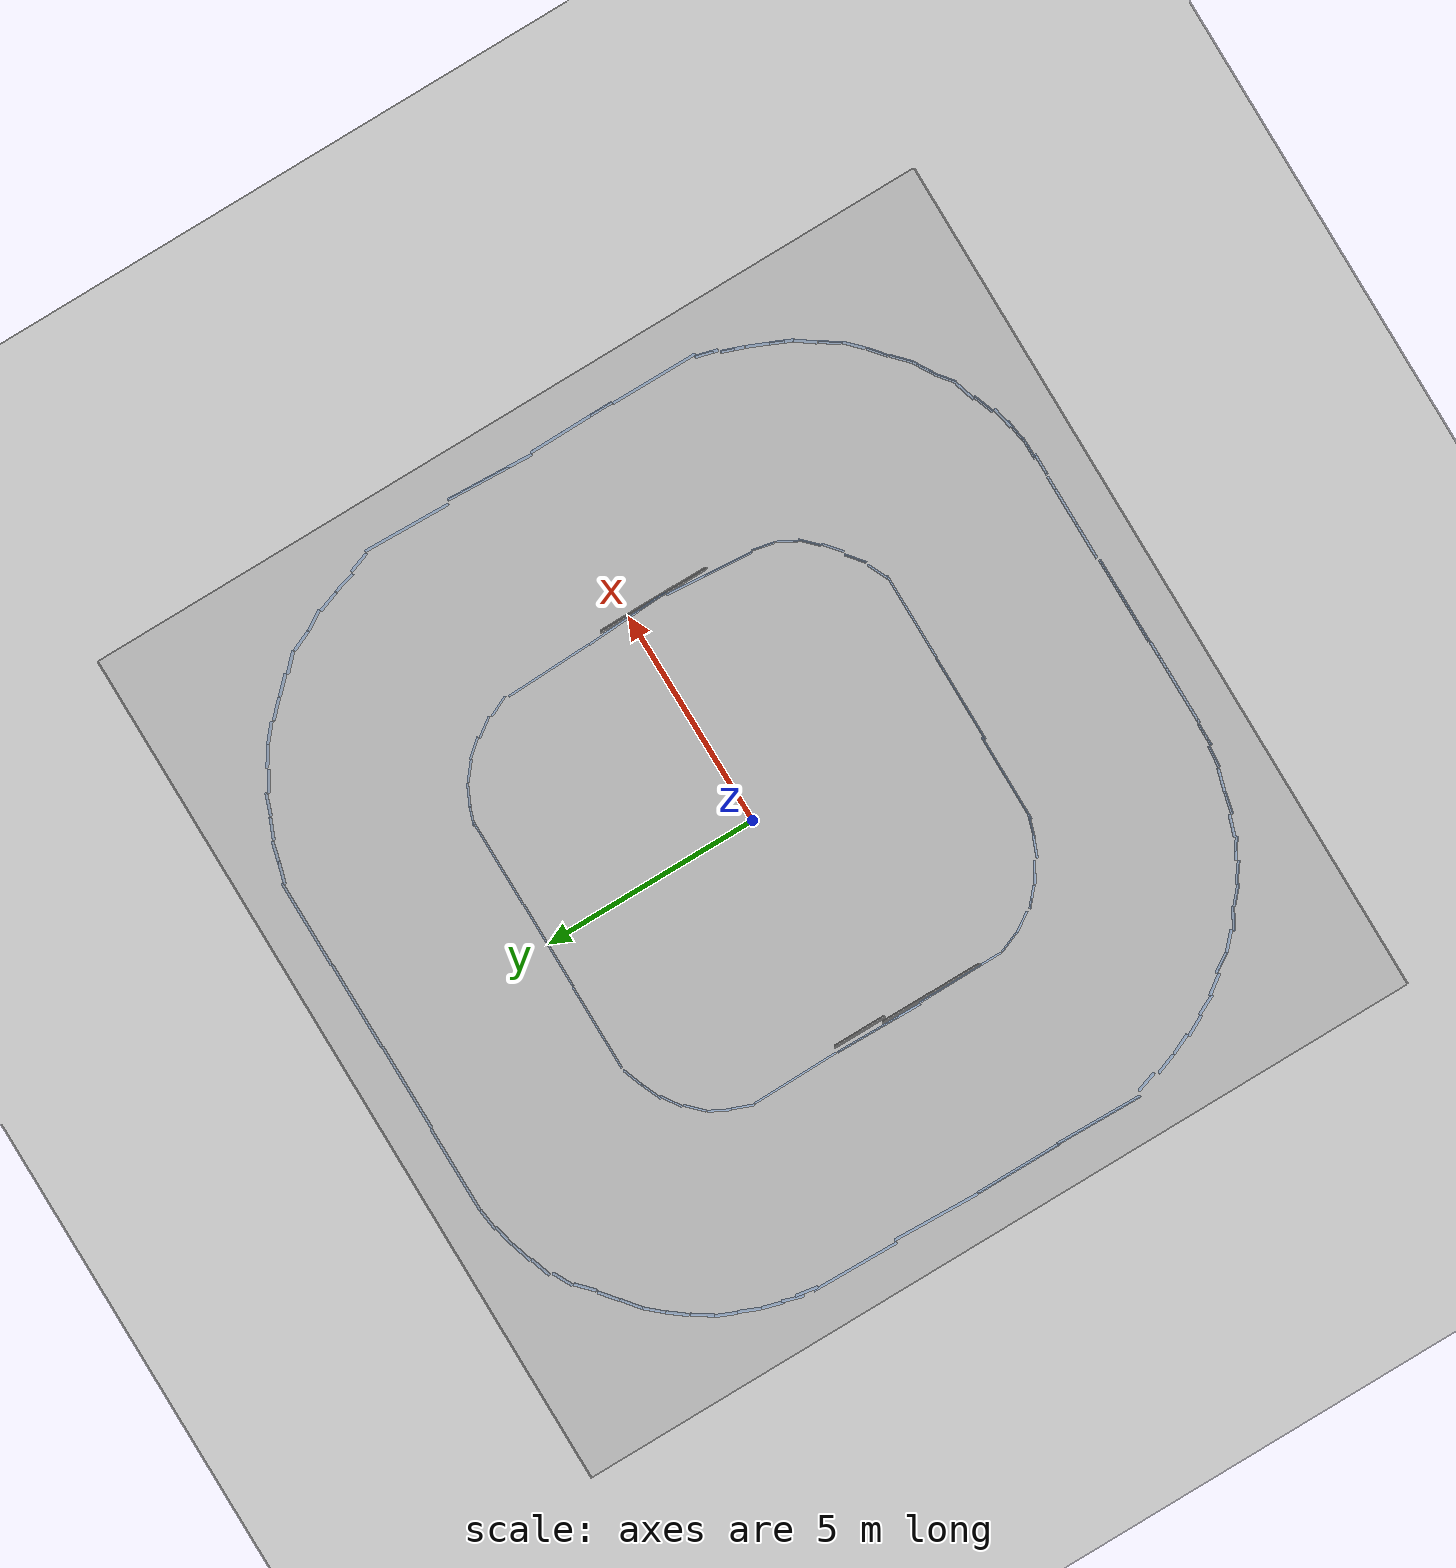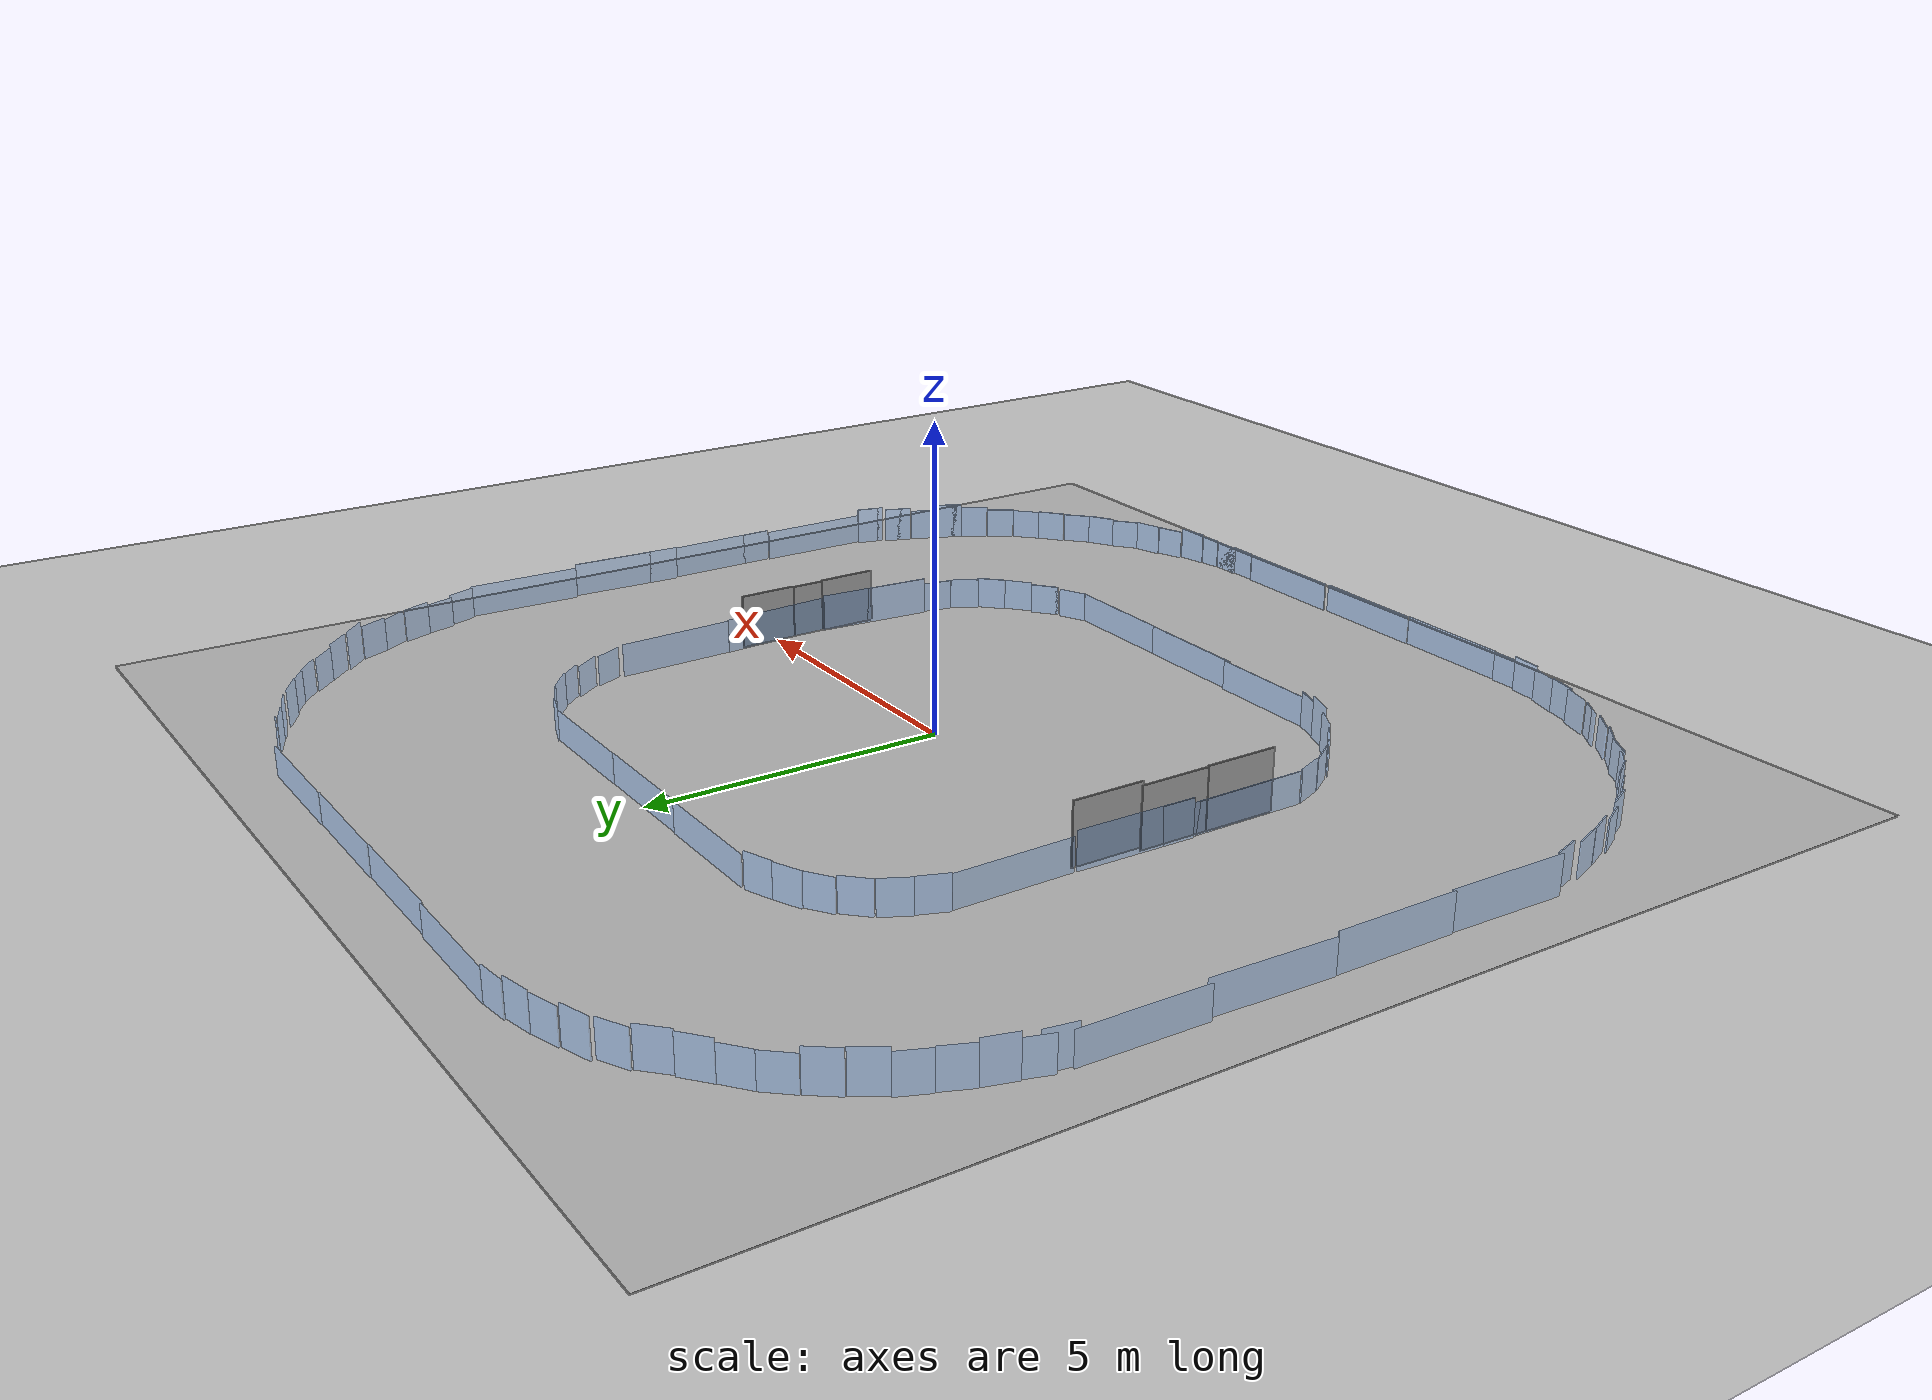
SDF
<sdf version="1.7">
 <world name="saft_city_arena">
  <model name="ground_plane">
   <static>1</static>
   <link name="link">
    <collision name="collision">
     <geometry><plane><normal>0 0 1</normal><size>100 100</size></plane></geometry>
     <surface>
      <contact><collide_bitmask>65535</collide_bitmask></contact>
      <friction><ode><mu>100</mu><mu2>50</mu2></ode></friction>
     </surface>
    </collision>
    <visual name="visual">
     <cast_shadows>0</cast_shadows>
     <geometry><plane><normal>0 0 1</normal><size>100 100</size></plane></geometry>
     <material>
      <script><uri>file://media/materials/scripts/gazebo.material</uri><name>Gazebo/Grey</name></script>
     </material>
    </visual>
   </link>
  </model>
  <model name="race_track">
   <pose>-0.01892 0.017455 0 0 -0 0</pose>
   <static>1</static>
   <link name="ground">
    <collision name="collision">
     <pose>0 0 -0.025 0 -0 0</pose>
     <geometry><box><size>20 20 0.08</size></box></geometry>
    </collision>
    <visual name="visual">
     <pose>0 0 0.005 0 -0 0</pose>
     <geometry><box><size>20 20 0.01</size></box></geometry>
     <material><script><uri>model://race_track</uri><name>race_track/ground</name></script></material>
    </visual>
   </link>
  </model>
  <model name="trash_sign_01">
   <static>1</static>
   <link name="sign">
    <visual name="visual">
     <pose>0 0 0.1 0 -0 0</pose>
     <geometry><box><size>0.02 1 1</size></box></geometry>
     <material>
      <script>
       <uri>model://photo_signs/trash_sign_01/materials/scripts</uri>
       <uri>model://photo_signs/trash_sign_01/materials/textures</uri>
       <name>PhotoSign/trash_sign_01</name>
      </script>
     </material>
    </visual>
   </link>
   <pose>5.03179 -1.40382 0.327227 0 -0 0</pose>
  </model>
  <model name="trash_sign_02">
   <static>1</static>
   <link name="sign">
    <visual name="visual">
     <pose>0 0 0.1 0 -0 0</pose>
     <geometry><box><size>0.02 1 1</size></box></geometry>
     <material>
      <script>
       <uri>model://photo_signs/trash_sign_02/materials/scripts</uri>
       <uri>model://photo_signs/trash_sign_02/materials/textures</uri>
       <name>PhotoSign/trash_sign_02</name>
      </script>
     </material>
    </visual>
   </link>
   <pose>5.04017 -0.636448 0.309953 0 -0 0</pose>
  </model>
  <model name="trash_sign_03">
   <static>1</static>
   <link name="sign">
    <visual name="visual">
     <pose>0 0 0.1 0 -0 0</pose>
     <geometry><box><size>0.02 1 1</size></box></geometry>
     <material>
      <script>
       <uri>model://photo_signs/trash_sign_03/materials/scripts</uri>
       <uri>model://photo_signs/trash_sign_03/materials/textures</uri>
       <name>PhotoSign/trash_sign_03</name>
      </script>
     </material>
    </visual>
   </link>
   <pose>5.03698 0.168034 0.324503 0 -0 0</pose>
  </model>
  <model name="building_sign_02">
   <static>1</static>
   <link name="sign">
    <visual name="visual">
     <pose>0 0 0.175 0 -0 0</pose>
     <geometry><box><size>0.02 1.2 1.2</size></box></geometry>
     <material>
      <script>
       <uri>model://photo_signs/building_sign_02/materials/scripts</uri>
       <uri>model://photo_signs/building_sign_02/materials/textures</uri>
       <name>PhotoSign/building_sign_02</name>
      </script>
     </material>
    </visual>
   </link>
   <pose>-4.91211 0.369082 0.244687 0 -0 0</pose>
  </model>
  <model name="building_sign_03">
   <static>1</static>
   <link name="sign">
    <visual name="visual">
     <pose>0 0 0.175 0 -0 0</pose>
     <geometry><box><size>0.02 1.2 1.2</size></box></geometry>
     <material>
      <script>
       <uri>model://photo_signs/building_sign_03/materials/scripts</uri>
       <uri>model://photo_signs/building_sign_03/materials/textures</uri>
       <name>PhotoSign/building_sign_03</name>
      </script>
     </material>
    </visual>
   </link>
   <pose>-4.99648 -0.747766 0.224309 0 -0 0</pose>
  </model>
  <model name="building_sign_04">
   <static>1</static>
   <link name="sign">
    <visual name="visual">
     <pose>0 0 0.175 0 -0 0</pose>
     <geometry><box><size>0.02 1.2 1.2</size></box></geometry>
     <material>
      <script>
       <uri>model://photo_signs/building_sign_04/materials/scripts</uri>
       <uri>model://photo_signs/building_sign_04/materials/textures</uri>
       <name>PhotoSign/building_sign_04</name>
      </script>
     </material>
    </visual>
   </link>
   <pose>-5.00213 -1.91043 0.243349 0 -0 0</pose>
  </model>
  <model name="transparent_wall">
   <static>1</static>
   <link name="wall">
    <collision name="collision"><geometry><box><size>2 0.02 1</size></box></geometry></collision>
    <visual name="visual">
     <geometry><box><size>2 0.02 1</size></box></geometry>
     <material>
      <ambient>0.3 0.6 1 0.3</ambient>
      <diffuse>0.3 0.6 1 0.3</diffuse>
      <specular>0 0 0 0</specular>
      <emissive>0 0 0 0</emissive>
     </material>
    </visual>
   </link>
   <pose>-0.063638 -5.05574 0 0 -0 0</pose>
  </model>
  <model name="transparent_wall_0">
   <static>1</static>
   <link name="wall">
    <collision name="collision"><geometry><box><size>2 0.02 1</size></box></geometry></collision>
    <visual name="visual">
     <geometry><box><size>2 0.02 1</size></box></geometry>
     <material>
      <ambient>0.3 0.6 1 0.3</ambient>
      <diffuse>0.3 0.6 1 0.3</diffuse>
      <specular>0 0 0 0</specular>
      <emissive>0 0 0 0</emissive>
     </material>
    </visual>
   </link>
   <pose>-1.98522 -5.01412 0 0 -0 0</pose>
  </model>
  <model name="transparent_wall_1">
   <static>1</static>
   <link name="wall">
    <collision name="collision"><geometry><box><size>2 0.02 1</size></box></geometry></collision>
    <visual name="visual">
     <geometry><box><size>2 0.02 1</size></box></geometry>
     <material>
      <ambient>0.3 0.6 1 0.3</ambient>
      <diffuse>0.3 0.6 1 0.3</diffuse>
      <specular>0 0 0 0</specular>
      <emissive>0 0 0 0</emissive>
     </material>
    </visual>
   </link>
   <pose>-2.09189 -9.06095 0 0 -0 0</pose>
  </model>
  <model name="transparent_wall_2">
   <static>1</static>
   <link name="wall">
    <collision name="collision"><geometry><box><size>2 0.02 1</size></box></geometry></collision>
    <visual name="visual">
     <geometry><box><size>2 0.02 1</size></box></geometry>
     <material>
      <ambient>0.3 0.6 1 0.3</ambient>
      <diffuse>0.3 0.6 1 0.3</diffuse>
      <specular>0 0 0 0</specular>
      <emissive>0 0 0 0</emissive>
     </material>
    </visual>
   </link>
   <pose>-0.079167 -9.04363 0 0 -0 0</pose>
  </model>
  <model name="transparent_wall_3">
   <static>1</static>
   <link name="wall">
    <collision name="collision"><geometry><box><size>2 0.02 1</size></box></geometry></collision>
    <visual name="visual">
     <geometry><box><size>2 0.02 1</size></box></geometry>
     <material>
      <ambient>0.3 0.6 1 0.3</ambient>
      <diffuse>0.3 0.6 1 0.3</diffuse>
      <specular>0 0 0 0</specular>
      <emissive>0 0 0 0</emissive>
     </material>
    </visual>
   </link>
   <pose>1.97662 -9.01296 0 0 -0 0</pose>
  </model>
  <model name="transparent_wall_4">
   <static>1</static>
   <link name="wall">
    <collision name="collision"><geometry><box><size>2 0.02 1</size></box></geometry></collision>
    <visual name="visual">
     <geometry><box><size>2 0.02 1</size></box></geometry>
     <material>
      <ambient>0.3 0.6 1 0.3</ambient>
      <diffuse>0.3 0.6 1 0.3</diffuse>
      <specular>0 0 0 0</specular>
      <emissive>0 0 0 0</emissive>
     </material>
    </visual>
   </link>
   <pose>1.93743 -5.06455 0 0 -0 0</pose>
  </model>
  <model name="transparent_wall_5">
   <static>1</static>
   <link name="wall">
    <collision name="collision"><geometry><box><size>2 0.02 1</size></box></geometry></collision>
    <visual name="visual">
     <geometry><box><size>2 0.02 1</size></box></geometry>
     <material>
      <ambient>0.3 0.6 1 0.3</ambient>
      <diffuse>0.3 0.6 1 0.3</diffuse>
      <specular>0 0 0 0</specular>
      <emissive>0 0 0 0</emissive>
     </material>
    </visual>
   </link>
   <pose>-5.05108 -2.0249 0.028425 0 0 -1.56328</pose>
  </model>
  <model name="transparent_wall_6">
   <static>1</static>
   <link name="wall">
    <collision name="collision"><geometry><box><size>2 0.02 1</size></box></geometry></collision>
    <visual name="visual">
     <geometry><box><size>2 0.02 1</size></box></geometry>
     <material>
      <ambient>0.3 0.6 1 0.3</ambient>
      <diffuse>0.3 0.6 1 0.3</diffuse>
      <specular>0 0 0 0</specular>
      <emissive>0 0 0 0</emissive>
     </material>
    </visual>
   </link>
   <pose>-5.07219 -0.024101 0.128366 0 -0 1.55488</pose>
  </model>
  <model name="transparent_wall_8">
   <static>1</static>
   <link name="wall">
    <collision name="collision"><geometry><box><size>2 0.02 1</size></box></geometry></collision>
    <visual name="visual">
     <geometry><box><size>2 0.02 1</size></box></geometry>
     <material>
      <ambient>0.3 0.6 1 0.3</ambient>
      <diffuse>0.3 0.6 1 0.3</diffuse>
      <specular>0 0 0 0</specular>
      <emissive>0 0 0 0</emissive>
     </material>
    </visual>
   </link>
   <pose>4.8982 -1.90916 0.141159 0 0 -1.65353</pose>
  </model>
  <model name="transparent_wall_9">
   <static>1</static>
   <link name="wall">
    <collision name="collision"><geometry><box><size>2 0.02 1</size></box></geometry></collision>
    <visual name="visual">
     <geometry><box><size>2 0.02 1</size></box></geometry>
     <material>
      <ambient>0.3 0.6 1 0.3</ambient>
      <diffuse>0.3 0.6 1 0.3</diffuse>
      <specular>0 0 0 0</specular>
      <emissive>0 0 0 0</emissive>
     </material>
    </visual>
   </link>
   <pose>4.98103 0.003821 0.088769 0 0 -1.51702</pose>
  </model>
  <model name="transparent_wall_short">
   <static>1</static>
   <link name="wall">
    <collision name="collision"><geometry><box><size>0.5 0.02 1</size></box></geometry></collision>
    <visual name="visual">
     <geometry><box><size>0.5 0.02 1</size></box></geometry>
     <material>
      <ambient>0.3 0.6 1 0.3</ambient>
      <diffuse>0.3 0.6 1 0.3</diffuse>
      <specular>0 0 0 0</specular>
      <emissive>0 0 0 0</emissive>
     </material>
    </visual>
   </link>
   <pose>-4.94708 -3.28797 0.040987 0 0 -1.18648</pose>
  </model>
  <model name="transparent_wall_short_0">
   <static>1</static>
   <link name="wall">
    <collision name="collision"><geometry><box><size>0.5 0.02 1</size></box></geometry></collision>
    <visual name="visual">
     <geometry><box><size>0.5 0.02 1</size></box></geometry>
     <material>
      <ambient>0.3 0.6 1 0.3</ambient>
      <diffuse>0.3 0.6 1 0.3</diffuse>
      <specular>0 0 0 0</specular>
      <emissive>0 0 0 0</emissive>
     </material>
    </visual>
   </link>
   <pose>-4.7203 -3.73547 0.029213 0 0 -0.987347</pose>
  </model>
  <model name="transparent_wall_short_1">
   <static>1</static>
   <link name="wall">
    <collision name="collision"><geometry><box><size>0.5 0.02 1</size></box></geometry></collision>
    <visual name="visual">
     <geometry><box><size>0.5 0.02 1</size></box></geometry>
     <material>
      <ambient>0.3 0.6 1 0.3</ambient>
      <diffuse>0.3 0.6 1 0.3</diffuse>
      <specular>0 0 0 0</specular>
      <emissive>0 0 0 0</emissive>
     </material>
    </visual>
   </link>
   <pose>-4.37851 -4.17919 0.107006 0 0 -0.722057</pose>
  </model>
  <model name="transparent_wall_short_2">
   <static>1</static>
   <link name="wall">
    <collision name="collision"><geometry><box><size>0.5 0.02 1</size></box></geometry></collision>
    <visual name="visual">
     <geometry><box><size>0.5 0.02 1</size></box></geometry>
     <material>
      <ambient>0.3 0.6 1 0.3</ambient>
      <diffuse>0.3 0.6 1 0.3</diffuse>
      <specular>0 0 0 0</specular>
      <emissive>0 0 0 0</emissive>
     </material>
    </visual>
   </link>
   <pose>-3.96842 -4.49368 0.136805 0 0 -0.518828</pose>
  </model>
  <model name="transparent_wall_short_3">
   <static>1</static>
   <link name="wall">
    <collision name="collision"><geometry><box><size>0.5 0.02 1</size></box></geometry></collision>
    <visual name="visual">
     <geometry><box><size>0.5 0.02 1</size></box></geometry>
     <material>
      <ambient>0.3 0.6 1 0.3</ambient>
      <diffuse>0.3 0.6 1 0.3</diffuse>
      <specular>0 0 0 0</specular>
      <emissive>0 0 0 0</emissive>
     </material>
    </visual>
   </link>
   <pose>-3.51803 -4.77775 0.183505 0 0 -0.369282</pose>
  </model>
  <model name="transparent_wall_short_4">
   <static>1</static>
   <link name="wall">
    <collision name="collision"><geometry><box><size>0.5 0.02 1</size></box></geometry></collision>
    <visual name="visual">
     <geometry><box><size>0.5 0.02 1</size></box></geometry>
     <material>
      <ambient>0.3 0.6 1 0.3</ambient>
      <diffuse>0.3 0.6 1 0.3</diffuse>
      <specular>0 0 0 0</specular>
      <emissive>0 0 0 0</emissive>
     </material>
    </visual>
   </link>
   <pose>-3.10991 -4.93677 0.093668 0 0 -0.308535</pose>
  </model>
  <model name="transparent_wall_short_5">
   <static>1</static>
   <link name="wall">
    <collision name="collision"><geometry><box><size>0.5 0.02 1</size></box></geometry></collision>
    <visual name="visual">
     <geometry><box><size>0.5 0.02 1</size></box></geometry>
     <material>
      <ambient>0.3 0.6 1 0.3</ambient>
      <diffuse>0.3 0.6 1 0.3</diffuse>
      <specular>0 0 0 0</specular>
      <emissive>0 0 0 0</emissive>
     </material>
    </visual>
   </link>
   <pose>3.11225 -4.94553 0.008288 0 -0 0.440215</pose>
  </model>
  <model name="transparent_wall_short_6">
   <static>1</static>
   <link name="wall">
    <collision name="collision"><geometry><box><size>0.5 0.02 1</size></box></geometry></collision>
    <visual name="visual">
     <geometry><box><size>0.5 0.02 1</size></box></geometry>
     <material>
      <ambient>0.3 0.6 1 0.3</ambient>
      <diffuse>0.3 0.6 1 0.3</diffuse>
      <specular>0 0 0 0</specular>
      <emissive>0 0 0 0</emissive>
     </material>
    </visual>
   </link>
   <pose>3.58736 -4.68834 0.024846 0 -0 0.688681</pose>
  </model>
  <model name="transparent_wall_short_7">
   <static>1</static>
   <link name="wall">
    <collision name="collision"><geometry><box><size>0.5 0.02 1</size></box></geometry></collision>
    <visual name="visual">
     <geometry><box><size>0.5 0.02 1</size></box></geometry>
     <material>
      <ambient>0.3 0.6 1 0.3</ambient>
      <diffuse>0.3 0.6 1 0.3</diffuse>
      <specular>0 0 0 0</specular>
      <emissive>0 0 0 0</emissive>
     </material>
    </visual>
   </link>
   <pose>4.02029 -4.40085 0.035984 0 -0 0.715586</pose>
  </model>
  <model name="transparent_wall_short_8">
   <static>1</static>
   <link name="wall">
    <collision name="collision"><geometry><box><size>0.5 0.02 1</size></box></geometry></collision>
    <visual name="visual">
     <geometry><box><size>0.5 0.02 1</size></box></geometry>
     <material>
      <ambient>0.3 0.6 1 0.3</ambient>
      <diffuse>0.3 0.6 1 0.3</diffuse>
      <specular>0 0 0 0</specular>
      <emissive>0 0 0 0</emissive>
     </material>
    </visual>
   </link>
   <pose>4.36224 -4.04912 0.049637 0 -0 0.783063</pose>
  </model>
  <model name="transparent_wall_short_9">
   <static>1</static>
   <link name="wall">
    <collision name="collision"><geometry><box><size>0.5 0.02 1</size></box></geometry></collision>
    <visual name="visual">
     <geometry><box><size>0.5 0.02 1</size></box></geometry>
     <material>
      <ambient>0.3 0.6 1 0.3</ambient>
      <diffuse>0.3 0.6 1 0.3</diffuse>
      <specular>0 0 0 0</specular>
      <emissive>0 0 0 0</emissive>
     </material>
    </visual>
   </link>
   <pose>4.63881 -3.651 0.033295 -0.016287 -0.009075 1.06248</pose>
  </model>
  <model name="transparent_wall_short_10">
   <static>1</static>
   <link name="wall">
    <collision name="collision"><geometry><box><size>0.5 0.02 1</size></box></geometry></collision>
    <visual name="visual">
     <geometry><box><size>0.5 0.02 1</size></box></geometry>
     <material>
      <ambient>0.3 0.6 1 0.3</ambient>
      <diffuse>0.3 0.6 1 0.3</diffuse>
      <specular>0 0 0 0</specular>
      <emissive>0 0 0 0</emissive>
     </material>
    </visual>
   </link>
   <pose>4.80251 -3.16733 0.029548 0 -0 1.36219</pose>
  </model>
  <model name="transparent_wall_14">
   <static>1</static>
   <link name="wall">
    <collision name="collision"><geometry><box><size>2 0.02 1</size></box></geometry></collision>
    <visual name="visual">
     <geometry><box><size>2 0.02 1</size></box></geometry>
     <material>
      <ambient>0.3 0.6 1 0.3</ambient>
      <diffuse>0.3 0.6 1 0.3</diffuse>
      <specular>0 0 0 0</specular>
      <emissive>0 0 0 0</emissive>
     </material>
    </visual>
   </link>
   <pose>-9.09276 -2.96726 0.139382 0 0 -1.59061</pose>
  </model>
  <model name="transparent_wall_15">
   <static>1</static>
   <link name="wall">
    <collision name="collision"><geometry><box><size>2 0.02 1</size></box></geometry></collision>
    <visual name="visual">
     <geometry><box><size>2 0.02 1</size></box></geometry>
     <material>
      <ambient>0.3 0.6 1 0.3</ambient>
      <diffuse>0.3 0.6 1 0.3</diffuse>
      <specular>0 0 0 0</specular>
      <emissive>0 0 0 0</emissive>
     </material>
    </visual>
   </link>
   <pose>-9.09233 -1.01612 0.12544 0 0 -1.57159</pose>
  </model>
  <model name="transparent_wall_23">
   <static>1</static>
   <link name="wall">
    <collision name="collision"><geometry><box><size>2 0.02 1</size></box></geometry></collision>
    <visual name="visual">
     <geometry><box><size>2 0.02 1</size></box></geometry>
     <material>
      <ambient>0.3 0.6 1 0.3</ambient>
      <diffuse>0.3 0.6 1 0.3</diffuse>
      <specular>0 0 0 0</specular>
      <emissive>0 0 0 0</emissive>
     </material>
    </visual>
   </link>
   <pose>8.99872 0.973942 0.103328 0 -0 1.52396</pose>
  </model>
  <model name="transparent_wall_24">
   <static>1</static>
   <link name="wall">
    <collision name="collision"><geometry><box><size>2 0.02 1</size></box></geometry></collision>
    <visual name="visual">
     <geometry><box><size>2 0.02 1</size></box></geometry>
     <material>
      <ambient>0.3 0.6 1 0.3</ambient>
      <diffuse>0.3 0.6 1 0.3</diffuse>
      <specular>0 0 0 0</specular>
      <emissive>0 0 0 0</emissive>
     </material>
    </visual>
   </link>
   <pose>9.00601 -1.01733 0.074598 0 0 -1.55922</pose>
  </model>
  <model name="transparent_wall_25">
   <static>1</static>
   <link name="wall">
    <collision name="collision"><geometry><box><size>2 0.02 1</size></box></geometry></collision>
    <visual name="visual">
     <geometry><box><size>2 0.02 1</size></box></geometry>
     <material>
      <ambient>0.3 0.6 1 0.3</ambient>
      <diffuse>0.3 0.6 1 0.3</diffuse>
      <specular>0 0 0 0</specular>
      <emissive>0 0 0 0</emissive>
     </material>
    </visual>
   </link>
   <pose>8.98635 -3.02295 0.040371 0 0 -1.57374</pose>
  </model>
  <model name="transparent_wall_short_23">
   <static>1</static>
   <link name="wall">
    <collision name="collision"><geometry><box><size>0.5 0.02 1</size></box></geometry></collision>
    <visual name="visual">
     <geometry><box><size>0.5 0.02 1</size></box></geometry>
     <material>
      <ambient>0.3 0.6 1 0.3</ambient>
      <diffuse>0.3 0.6 1 0.3</diffuse>
      <specular>0 0 0 0</specular>
      <emissive>0 0 0 0</emissive>
     </material>
    </visual>
   </link>
   <pose>3.25952 -9.02898 0 0 -0 0</pose>
  </model>
  <model name="transparent_wall_short_24">
   <static>1</static>
   <link name="wall">
    <collision name="collision"><geometry><box><size>0.5 0.02 1</size></box></geometry></collision>
    <visual name="visual">
     <geometry><box><size>0.5 0.02 1</size></box></geometry>
     <material>
      <ambient>0.3 0.6 1 0.3</ambient>
      <diffuse>0.3 0.6 1 0.3</diffuse>
      <specular>0 0 0 0</specular>
      <emissive>0 0 0 0</emissive>
     </material>
    </visual>
   </link>
   <pose>3.68431 -8.9851 0 0 -0 0</pose>
  </model>
  <model name="transparent_wall_short_25">
   <static>1</static>
   <link name="wall">
    <collision name="collision"><geometry><box><size>0.5 0.02 1</size></box></geometry></collision>
    <visual name="visual">
     <geometry><box><size>0.5 0.02 1</size></box></geometry>
     <material>
      <ambient>0.3 0.6 1 0.3</ambient>
      <diffuse>0.3 0.6 1 0.3</diffuse>
      <specular>0 0 0 0</specular>
      <emissive>0 0 0 0</emissive>
     </material>
    </visual>
   </link>
   <pose>4.16137 -8.93072 0.022818 0 -0 0.139918</pose>
  </model>
  <model name="transparent_wall_short_26">
   <static>1</static>
   <link name="wall">
    <collision name="collision"><geometry><box><size>0.5 0.02 1</size></box></geometry></collision>
    <visual name="visual">
     <geometry><box><size>0.5 0.02 1</size></box></geometry>
     <material>
      <ambient>0.3 0.6 1 0.3</ambient>
      <diffuse>0.3 0.6 1 0.3</diffuse>
      <specular>0 0 0 0</specular>
      <emissive>0 0 0 0</emissive>
     </material>
    </visual>
   </link>
   <pose>4.50867 -8.84013 0.068594 0 -0 0.202046</pose>
  </model>
  <model name="transparent_wall_short_27">
   <static>1</static>
   <link name="wall">
    <collision name="collision"><geometry><box><size>0.5 0.02 1</size></box></geometry></collision>
    <visual name="visual">
     <geometry><box><size>0.5 0.02 1</size></box></geometry>
     <material>
      <ambient>0.3 0.6 1 0.3</ambient>
      <diffuse>0.3 0.6 1 0.3</diffuse>
      <specular>0 0 0 0</specular>
      <emissive>0 0 0 0</emissive>
     </material>
    </visual>
   </link>
   <pose>4.96359 -8.65276 0.023366 0 -0 0.350414</pose>
  </model>
  <model name="transparent_wall_short_28">
   <static>1</static>
   <link name="wall">
    <collision name="collision"><geometry><box><size>0.5 0.02 1</size></box></geometry></collision>
    <visual name="visual">
     <geometry><box><size>0.5 0.02 1</size></box></geometry>
     <material>
      <ambient>0.3 0.6 1 0.3</ambient>
      <diffuse>0.3 0.6 1 0.3</diffuse>
      <specular>0 0 0 0</specular>
      <emissive>0 0 0 0</emissive>
     </material>
    </visual>
   </link>
   <pose>5.4002 -8.45681 0.039467 0 -0 0.301221</pose>
  </model>
  <model name="transparent_wall_short_29">
   <static>1</static>
   <link name="wall">
    <collision name="collision"><geometry><box><size>0.5 0.02 1</size></box></geometry></collision>
    <visual name="visual">
     <geometry><box><size>0.5 0.02 1</size></box></geometry>
     <material>
      <ambient>0.3 0.6 1 0.3</ambient>
      <diffuse>0.3 0.6 1 0.3</diffuse>
      <specular>0 0 0 0</specular>
      <emissive>0 0 0 0</emissive>
     </material>
    </visual>
   </link>
   <pose>5.85004 -8.24422 0.022703 0 -0 0.678454</pose>
  </model>
  <model name="transparent_wall_short_30">
   <static>1</static>
   <link name="wall">
    <collision name="collision"><geometry><box><size>0.5 0.02 1</size></box></geometry></collision>
    <visual name="visual">
     <geometry><box><size>0.5 0.02 1</size></box></geometry>
     <material>
      <ambient>0.3 0.6 1 0.3</ambient>
      <diffuse>0.3 0.6 1 0.3</diffuse>
      <specular>0 0 0 0</specular>
      <emissive>0 0 0 0</emissive>
     </material>
    </visual>
   </link>
   <pose>6.26836 -7.9627 0.042897 0 -0 0.534735</pose>
  </model>
  <model name="transparent_wall_short_31">
   <static>1</static>
   <link name="wall">
    <collision name="collision"><geometry><box><size>0.5 0.02 1</size></box></geometry></collision>
    <visual name="visual">
     <geometry><box><size>0.5 0.02 1</size></box></geometry>
     <material>
      <ambient>0.3 0.6 1 0.3</ambient>
      <diffuse>0.3 0.6 1 0.3</diffuse>
      <specular>0 0 0 0</specular>
      <emissive>0 0 0 0</emissive>
     </material>
    </visual>
   </link>
   <pose>6.66337 -7.67029 0.035367 0 -0 0.75631</pose>
  </model>
  <model name="transparent_wall_short_32">
   <static>1</static>
   <link name="wall">
    <collision name="collision"><geometry><box><size>0.5 0.02 1</size></box></geometry></collision>
    <visual name="visual">
     <geometry><box><size>0.5 0.02 1</size></box></geometry>
     <material>
      <ambient>0.3 0.6 1 0.3</ambient>
      <diffuse>0.3 0.6 1 0.3</diffuse>
      <specular>0 0 0 0</specular>
      <emissive>0 0 0 0</emissive>
     </material>
    </visual>
   </link>
   <pose>7.04323 -7.31351 0.049635 0 -0 0.689287</pose>
  </model>
  <model name="transparent_wall_short_33">
   <static>1</static>
   <link name="wall">
    <collision name="collision"><geometry><box><size>0.5 0.02 1</size></box></geometry></collision>
    <visual name="visual">
     <geometry><box><size>0.5 0.02 1</size></box></geometry>
     <material>
      <ambient>0.3 0.6 1 0.3</ambient>
      <diffuse>0.3 0.6 1 0.3</diffuse>
      <specular>0 0 0 0</specular>
      <emissive>0 0 0 0</emissive>
     </material>
    </visual>
   </link>
   <pose>7.41567 -6.97439 0.037726 0 -0 0.770949</pose>
  </model>
  <model name="transparent_wall_short_34">
   <static>1</static>
   <link name="wall">
    <collision name="collision"><geometry><box><size>0.5 0.02 1</size></box></geometry></collision>
    <visual name="visual">
     <geometry><box><size>0.5 0.02 1</size></box></geometry>
     <material>
      <ambient>0.3 0.6 1 0.3</ambient>
      <diffuse>0.3 0.6 1 0.3</diffuse>
      <specular>0 0 0 0</specular>
      <emissive>0 0 0 0</emissive>
     </material>
    </visual>
   </link>
   <pose>7.73122 -6.57005 0.059035 0 -0 0.975782</pose>
  </model>
  <model name="transparent_wall_short_35">
   <static>1</static>
   <link name="wall">
    <collision name="collision"><geometry><box><size>0.5 0.02 1</size></box></geometry></collision>
    <visual name="visual">
     <geometry><box><size>0.5 0.02 1</size></box></geometry>
     <material>
      <ambient>0.3 0.6 1 0.3</ambient>
      <diffuse>0.3 0.6 1 0.3</diffuse>
      <specular>0 0 0 0</specular>
      <emissive>0 0 0 0</emissive>
     </material>
    </visual>
   </link>
   <pose>8.01827 -6.13709 0.10284 0 -0 0.944371</pose>
  </model>
  <model name="transparent_wall_short_36">
   <static>1</static>
   <link name="wall">
    <collision name="collision"><geometry><box><size>0.5 0.02 1</size></box></geometry></collision>
    <visual name="visual">
     <geometry><box><size>0.5 0.02 1</size></box></geometry>
     <material>
      <ambient>0.3 0.6 1 0.3</ambient>
      <diffuse>0.3 0.6 1 0.3</diffuse>
      <specular>0 0 0 0</specular>
      <emissive>0 0 0 0</emissive>
     </material>
    </visual>
   </link>
   <pose>8.26788 -5.69794 0.169465 0 -0 1.15343</pose>
  </model>
  <model name="transparent_wall_short_37">
   <static>1</static>
   <link name="wall">
    <collision name="collision"><geometry><box><size>0.5 0.02 1</size></box></geometry></collision>
    <visual name="visual">
     <geometry><box><size>0.5 0.02 1</size></box></geometry>
     <material>
      <ambient>0.3 0.6 1 0.3</ambient>
      <diffuse>0.3 0.6 1 0.3</diffuse>
      <specular>0 0 0 0</specular>
      <emissive>0 0 0 0</emissive>
     </material>
    </visual>
   </link>
   <pose>8.47223 -5.23527 0.074383 0 -0 1.17334</pose>
  </model>
  <model name="transparent_wall_short_38">
   <static>1</static>
   <link name="wall">
    <collision name="collision"><geometry><box><size>0.5 0.02 1</size></box></geometry></collision>
    <visual name="visual">
     <geometry><box><size>0.5 0.02 1</size></box></geometry>
     <material>
      <ambient>0.3 0.6 1 0.3</ambient>
      <diffuse>0.3 0.6 1 0.3</diffuse>
      <specular>0 0 0 0</specular>
      <emissive>0 0 0 0</emissive>
     </material>
    </visual>
   </link>
   <pose>8.65678 -4.74785 0.141983 0 -0 1.21673</pose>
  </model>
  <model name="transparent_wall_short_39">
   <static>1</static>
   <link name="wall">
    <collision name="collision"><geometry><box><size>0.5 0.02 1</size></box></geometry></collision>
    <visual name="visual">
     <geometry><box><size>0.5 0.02 1</size></box></geometry>
     <material>
      <ambient>0.3 0.6 1 0.3</ambient>
      <diffuse>0.3 0.6 1 0.3</diffuse>
      <specular>0 0 0 0</specular>
      <emissive>0 0 0 0</emissive>
     </material>
    </visual>
   </link>
   <pose>8.86591 -4.23569 0.176604 0 -0 1.30805</pose>
  </model>
  <model name="transparent_wall_short_71">
   <static>1</static>
   <link name="wall">
    <collision name="collision"><geometry><box><size>0.5 0.02 1</size></box></geometry></collision>
    <visual name="visual">
     <geometry><box><size>0.5 0.02 1</size></box></geometry>
     <material>
      <ambient>0.3 0.6 1 0.3</ambient>
      <diffuse>0.3 0.6 1 0.3</diffuse>
      <specular>0 0 0 0</specular>
      <emissive>0 0 0 0</emissive>
     </material>
    </visual>
   </link>
   <pose>-3.35027 -9.03322 0 0 -0 0</pose>
  </model>
  <model name="transparent_wall_short_72">
   <static>1</static>
   <link name="wall">
    <collision name="collision"><geometry><box><size>0.5 0.02 1</size></box></geometry></collision>
    <visual name="visual">
     <geometry><box><size>0.5 0.02 1</size></box></geometry>
     <material>
      <ambient>0.3 0.6 1 0.3</ambient>
      <diffuse>0.3 0.6 1 0.3</diffuse>
      <specular>0 0 0 0</specular>
      <emissive>0 0 0 0</emissive>
     </material>
    </visual>
   </link>
   <pose>-3.84516 -8.95623 0.088814 0 0 -0.084904</pose>
  </model>
  <model name="transparent_wall_short_73">
   <static>1</static>
   <link name="wall">
    <collision name="collision"><geometry><box><size>0.5 0.02 1</size></box></geometry></collision>
    <visual name="visual">
     <geometry><box><size>0.5 0.02 1</size></box></geometry>
     <material>
      <ambient>0.3 0.6 1 0.3</ambient>
      <diffuse>0.3 0.6 1 0.3</diffuse>
      <specular>0 0 0 0</specular>
      <emissive>0 0 0 0</emissive>
     </material>
    </visual>
   </link>
   <pose>-4.33128 -8.83832 0.050873 0 0 -0.278207</pose>
  </model>
  <model name="transparent_wall_short_74">
   <static>1</static>
   <link name="wall">
    <collision name="collision"><geometry><box><size>0.5 0.02 1</size></box></geometry></collision>
    <visual name="visual">
     <geometry><box><size>0.5 0.02 1</size></box></geometry>
     <material>
      <ambient>0.3 0.6 1 0.3</ambient>
      <diffuse>0.3 0.6 1 0.3</diffuse>
      <specular>0 0 0 0</specular>
      <emissive>0 0 0 0</emissive>
     </material>
    </visual>
   </link>
   <pose>-4.82754 -8.71434 0.079404 0 0 -0.229612</pose>
  </model>
  <model name="transparent_wall_short_75">
   <static>1</static>
   <link name="wall">
    <collision name="collision"><geometry><box><size>0.5 0.02 1</size></box></geometry></collision>
    <visual name="visual">
     <geometry><box><size>0.5 0.02 1</size></box></geometry>
     <material>
      <ambient>0.3 0.6 1 0.3</ambient>
      <diffuse>0.3 0.6 1 0.3</diffuse>
      <specular>0 0 0 0</specular>
      <emissive>0 0 0 0</emissive>
     </material>
    </visual>
   </link>
   <pose>-5.26955 -8.53233 0.081066 0 0 -0.318264</pose>
  </model>
  <model name="transparent_wall_short_76">
   <static>1</static>
   <link name="wall">
    <collision name="collision"><geometry><box><size>0.5 0.02 1</size></box></geometry></collision>
    <visual name="visual">
     <geometry><box><size>0.5 0.02 1</size></box></geometry>
     <material>
      <ambient>0.3 0.6 1 0.3</ambient>
      <diffuse>0.3 0.6 1 0.3</diffuse>
      <specular>0 0 0 0</specular>
      <emissive>0 0 0 0</emissive>
     </material>
    </visual>
   </link>
   <pose>-5.71875 -8.36033 0.053683 0 0 -0.591165</pose>
  </model>
  <model name="transparent_wall_short_77">
   <static>1</static>
   <link name="wall">
    <collision name="collision"><geometry><box><size>0.5 0.02 1</size></box></geometry></collision>
    <visual name="visual">
     <geometry><box><size>0.5 0.02 1</size></box></geometry>
     <material>
      <ambient>0.3 0.6 1 0.3</ambient>
      <diffuse>0.3 0.6 1 0.3</diffuse>
      <specular>0 0 0 0</specular>
      <emissive>0 0 0 0</emissive>
     </material>
    </visual>
   </link>
   <pose>-6.16359 -8.12872 0.042721 0 0 -0.638686</pose>
  </model>
  <model name="transparent_wall_short_78">
   <static>1</static>
   <link name="wall">
    <collision name="collision"><geometry><box><size>0.5 0.02 1</size></box></geometry></collision>
    <visual name="visual">
     <geometry><box><size>0.5 0.02 1</size></box></geometry>
     <material>
      <ambient>0.3 0.6 1 0.3</ambient>
      <diffuse>0.3 0.6 1 0.3</diffuse>
      <specular>0 0 0 0</specular>
      <emissive>0 0 0 0</emissive>
     </material>
    </visual>
   </link>
   <pose>-6.55767 -7.85715 0.060793 0 0 -0.7238</pose>
  </model>
  <model name="transparent_wall_short_79">
   <static>1</static>
   <link name="wall">
    <collision name="collision"><geometry><box><size>0.5 0.02 1</size></box></geometry></collision>
    <visual name="visual">
     <geometry><box><size>0.5 0.02 1</size></box></geometry>
     <material>
      <ambient>0.3 0.6 1 0.3</ambient>
      <diffuse>0.3 0.6 1 0.3</diffuse>
      <specular>0 0 0 0</specular>
      <emissive>0 0 0 0</emissive>
     </material>
    </visual>
   </link>
   <pose>-6.95238 -7.54868 0.074755 0 0 -0.525252</pose>
  </model>
  <model name="transparent_wall_short_80">
   <static>1</static>
   <link name="wall">
    <collision name="collision"><geometry><box><size>0.5 0.02 1</size></box></geometry></collision>
    <visual name="visual">
     <geometry><box><size>0.5 0.02 1</size></box></geometry>
     <material>
      <ambient>0.3 0.6 1 0.3</ambient>
      <diffuse>0.3 0.6 1 0.3</diffuse>
      <specular>0 0 0 0</specular>
      <emissive>0 0 0 0</emissive>
     </material>
    </visual>
   </link>
   <pose>-7.29882 -7.2293 0.069877 0 0 -0.741464</pose>
  </model>
  <model name="transparent_wall_short_81">
   <static>1</static>
   <link name="wall">
    <collision name="collision"><geometry><box><size>0.5 0.02 1</size></box></geometry></collision>
    <visual name="visual">
     <geometry><box><size>0.5 0.02 1</size></box></geometry>
     <material>
      <ambient>0.3 0.6 1 0.3</ambient>
      <diffuse>0.3 0.6 1 0.3</diffuse>
      <specular>0 0 0 0</specular>
      <emissive>0 0 0 0</emissive>
     </material>
    </visual>
   </link>
   <pose>-7.6051 -6.86093 0.1283 0 0 -1.01157</pose>
  </model>
  <model name="transparent_wall_short_82">
   <static>1</static>
   <link name="wall">
    <collision name="collision"><geometry><box><size>0.5 0.02 1</size></box></geometry></collision>
    <visual name="visual">
     <geometry><box><size>0.5 0.02 1</size></box></geometry>
     <material>
      <ambient>0.3 0.6 1 0.3</ambient>
      <diffuse>0.3 0.6 1 0.3</diffuse>
      <specular>0 0 0 0</specular>
      <emissive>0 0 0 0</emissive>
     </material>
    </visual>
   </link>
   <pose>-7.92332 -6.50084 0.095062 0 0 -0.940464</pose>
  </model>
  <model name="transparent_wall_short_83">
   <static>1</static>
   <link name="wall">
    <collision name="collision"><geometry><box><size>0.5 0.02 1</size></box></geometry></collision>
    <visual name="visual">
     <geometry><box><size>0.5 0.02 1</size></box></geometry>
     <material>
      <ambient>0.3 0.6 1 0.3</ambient>
      <diffuse>0.3 0.6 1 0.3</diffuse>
      <specular>0 0 0 0</specular>
      <emissive>0 0 0 0</emissive>
     </material>
    </visual>
   </link>
   <pose>-8.19447 -6.12553 0.075441 0 0 -1.11014</pose>
  </model>
  <model name="transparent_wall_short_84">
   <static>1</static>
   <link name="wall">
    <collision name="collision"><geometry><box><size>0.5 0.02 1</size></box></geometry></collision>
    <visual name="visual">
     <geometry><box><size>0.5 0.02 1</size></box></geometry>
     <material>
      <ambient>0.3 0.6 1 0.3</ambient>
      <diffuse>0.3 0.6 1 0.3</diffuse>
      <specular>0 0 0 0</specular>
      <emissive>0 0 0 0</emissive>
     </material>
    </visual>
   </link>
   <pose>-8.4536 -5.70867 0.028305 0 0 -1.08337</pose>
  </model>
  <model name="transparent_wall_short_85">
   <static>1</static>
   <link name="wall">
    <collision name="collision"><geometry><box><size>0.5 0.02 1</size></box></geometry></collision>
    <visual name="visual">
     <geometry><box><size>0.5 0.02 1</size></box></geometry>
     <material>
      <ambient>0.3 0.6 1 0.3</ambient>
      <diffuse>0.3 0.6 1 0.3</diffuse>
      <specular>0 0 0 0</specular>
      <emissive>0 0 0 0</emissive>
     </material>
    </visual>
   </link>
   <pose>-8.62809 -5.24407 0.074537 0 0 -1.13489</pose>
  </model>
  <model name="transparent_wall_short_86">
   <static>1</static>
   <link name="wall">
    <collision name="collision"><geometry><box><size>0.5 0.02 1</size></box></geometry></collision>
    <visual name="visual">
     <geometry><box><size>0.5 0.02 1</size></box></geometry>
     <material>
      <ambient>0.3 0.6 1 0.3</ambient>
      <diffuse>0.3 0.6 1 0.3</diffuse>
      <specular>0 0 0 0</specular>
      <emissive>0 0 0 0</emissive>
     </material>
    </visual>
   </link>
   <pose>-8.81965 -4.77691 0.081026 0 0 -1.21648</pose>
  </model>
  <model name="transparent_wall_short_87">
   <static>1</static>
   <link name="wall">
    <collision name="collision"><geometry><box><size>0.5 0.02 1</size></box></geometry></collision>
    <visual name="visual">
     <geometry><box><size>0.5 0.02 1</size></box></geometry>
     <material>
      <ambient>0.3 0.6 1 0.3</ambient>
      <diffuse>0.3 0.6 1 0.3</diffuse>
      <specular>0 0 0 0</specular>
      <emissive>0 0 0 0</emissive>
     </material>
    </visual>
   </link>
   <pose>-8.93127 -4.22915 0.097933 0 0 -1.25073</pose>
  </model>
  <include>
   <uri>model://transparent_wall</uri>
   <name>transparent_wall_0</name>
   <pose>-1.9852 -5.0141 0.0000 0.0000 0.0000 0.0000</pose>
   <static>true</static>
  </include>
  <include>
   <uri>model://transparent_wall</uri>
   <name>transparent_wall_14</name>
   <pose>-9.0928 -2.9673 0.1394 0.0000 0.0000 -1.5906</pose>
   <static>true</static>
  </include>
  <include>
   <uri>model://transparent_wall</uri>
   <name>transparent_wall_2</name>
   <pose>-0.0792 -9.0436 0.0000 0.0000 0.0000 0.0000</pose>
   <static>true</static>
  </include>
  <include>
   <uri>model://transparent_wall</uri>
   <name>transparent_wall_23</name>
   <pose>8.9987 0.9739 0.1033 0.0000 0.0000 1.5240</pose>
   <static>true</static>
  </include>
  <include>
   <uri>model://transparent_wall</uri>
   <name>transparent_wall_25</name>
   <pose>8.9863 -3.0230 0.0404 0.0000 0.0000 -1.5737</pose>
   <static>true</static>
  </include>
  <include>
   <uri>model://transparent_wall</uri>
   <name>transparent_wall_4</name>
   <pose>1.9374 -5.0646 0.0000 0.0000 0.0000 0.0000</pose>
   <static>true</static>
  </include>
  <include>
   <uri>model://transparent_wall</uri>
   <name>transparent_wall_6</name>
   <pose>-5.0722 -0.0241 0.1284 0.0000 0.0000 1.5549</pose>
   <static>true</static>
  </include>
  <include>
   <uri>model://transparent_wall</uri>
   <name>transparent_wall_8</name>
   <pose>4.8982 -1.9092 0.1412 0.0000 0.0000 -1.6535</pose>
   <static>true</static>
  </include>
  <include>
   <uri>model://transparent_wall_short</uri>
   <name>transparent_wall_short</name>
   <pose>-4.9471 -3.2880 0.0410 0.0000 0.0000 -1.1865</pose>
   <static>true</static>
  </include>
  <include>
   <uri>model://transparent_wall_short</uri>
   <name>transparent_wall_short_1</name>
   <pose>-4.3785 -4.1792 0.1070 0.0000 0.0000 -0.7221</pose>
   <static>true</static>
  </include>
  <include>
   <uri>model://transparent_wall_short</uri>
   <name>transparent_wall_short_24</name>
   <pose>3.6843 -8.9851 0.0000 0.0000 0.0000 0.0000</pose>
   <static>true</static>
  </include>
  <include>
   <uri>model://transparent_wall_short</uri>
   <name>transparent_wall_short_26</name>
   <pose>4.5087 -8.8401 0.0686 0.0000 0.0000 0.2020</pose>
   <static>true</static>
  </include>
  <include>
   <uri>model://transparent_wall_short</uri>
   <name>transparent_wall_short_28</name>
   <pose>5.4002 -8.4568 0.0395 0.0000 0.0000 0.3012</pose>
   <static>true</static>
  </include>
  <include>
   <uri>model://transparent_wall_short</uri>
   <name>transparent_wall_short_3</name>
   <pose>-3.5180 -4.7778 0.1835 0.0000 0.0000 -0.3693</pose>
   <static>true</static>
  </include>
  <include>
   <uri>model://transparent_wall_short</uri>
   <name>transparent_wall_short_31</name>
   <pose>6.6634 -7.6703 0.0354 0.0000 0.0000 0.7563</pose>
   <static>true</static>
  </include>
  <include>
   <uri>model://transparent_wall_short</uri>
   <name>transparent_wall_short_33</name>
   <pose>7.4157 -6.9744 0.0377 0.0000 0.0000 0.7709</pose>
   <static>true</static>
  </include>
  <include>
   <uri>model://transparent_wall_short</uri>
   <name>transparent_wall_short_35</name>
   <pose>8.0183 -6.1371 0.1028 0.0000 0.0000 0.9444</pose>
   <static>true</static>
  </include>
  <include>
   <uri>model://transparent_wall_short</uri>
   <name>transparent_wall_short_37</name>
   <pose>8.4722 -5.2353 0.0744 0.0000 0.0000 1.1733</pose>
   <static>true</static>
  </include>
  <include>
   <uri>model://transparent_wall_short</uri>
   <name>transparent_wall_short_39</name>
   <pose>8.8659 -4.2357 0.1766 0.0000 0.0000 1.3081</pose>
   <static>true</static>
  </include>
  <include>
   <uri>model://transparent_wall_short</uri>
   <name>transparent_wall_short_5</name>
   <pose>3.1123 -4.9455 0.0083 0.0000 0.0000 0.4402</pose>
   <static>true</static>
  </include>
  <include>
   <uri>model://transparent_wall_short</uri>
   <name>transparent_wall_short_7</name>
   <pose>4.0203 -4.4008 0.0360 0.0000 0.0000 0.7156</pose>
   <static>true</static>
  </include>
  <include>
   <uri>model://transparent_wall_short</uri>
   <name>transparent_wall_short_71</name>
   <pose>-3.3503 -9.0332 0.0000 0.0000 0.0000 0.0000</pose>
   <static>true</static>
  </include>
  <include>
   <uri>model://transparent_wall_short</uri>
   <name>transparent_wall_short_73</name>
   <pose>-4.3313 -8.8383 0.0509 0.0000 0.0000 -0.2782</pose>
   <static>true</static>
  </include>
  <include>
   <uri>model://transparent_wall_short</uri>
   <name>transparent_wall_short_75</name>
   <pose>-5.2696 -8.5323 0.0811 0.0000 0.0000 -0.3183</pose>
   <static>true</static>
  </include>
  <include>
   <uri>model://transparent_wall_short</uri>
   <name>transparent_wall_short_77</name>
   <pose>-6.1636 -8.1287 0.0427 0.0000 0.0000 -0.6387</pose>
   <static>true</static>
  </include>
  <include>
   <uri>model://transparent_wall_short</uri>
   <name>transparent_wall_short_79</name>
   <pose>-6.9524 -7.5487 0.0748 0.0000 0.0000 -0.5253</pose>
   <static>true</static>
  </include>
  <include>
   <uri>model://transparent_wall_short</uri>
   <name>transparent_wall_short_80</name>
   <pose>-7.2988 -7.2293 0.0699 0.0000 0.0000 -0.7415</pose>
   <static>true</static>
  </include>
  <include>
   <uri>model://transparent_wall_short</uri>
   <name>transparent_wall_short_82</name>
   <pose>-7.9233 -6.5008 0.0951 0.0000 0.0000 -0.9405</pose>
   <static>true</static>
  </include>
  <include>
   <uri>model://transparent_wall_short</uri>
   <name>transparent_wall_short_84</name>
   <pose>-8.4536 -5.7087 0.0283 0.0000 0.0000 -1.0834</pose>
   <static>true</static>
  </include>
  <include>
   <uri>model://transparent_wall_short</uri>
   <name>transparent_wall_short_86</name>
   <pose>-8.8197 -4.7769 0.0810 0.0000 0.0000 -1.2165</pose>
   <static>true</static>
  </include>
  <include>
   <uri>model://transparent_wall_short</uri>
   <name>transparent_wall_short_9</name>
   <pose>4.6388 -3.6510 0.0333 -0.0163 -0.0091 1.0625</pose>
   <static>true</static>
  </include>
  <include><uri>model://track_walls</uri><name>track_walls</name></include>
 </world>
</sdf>
